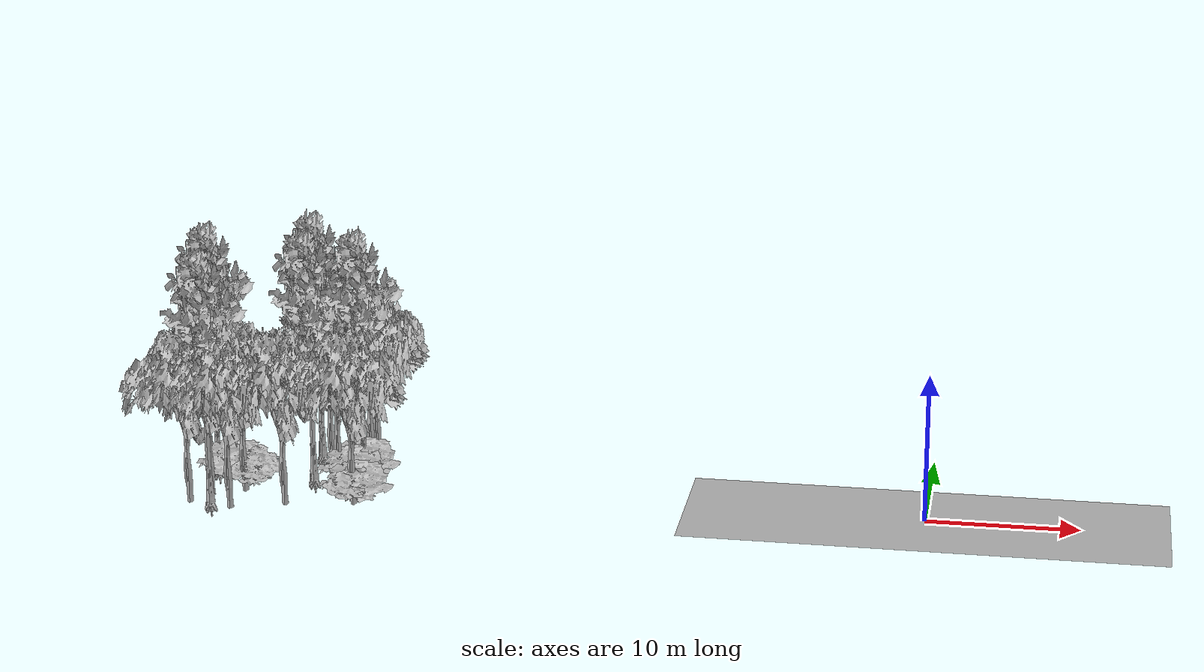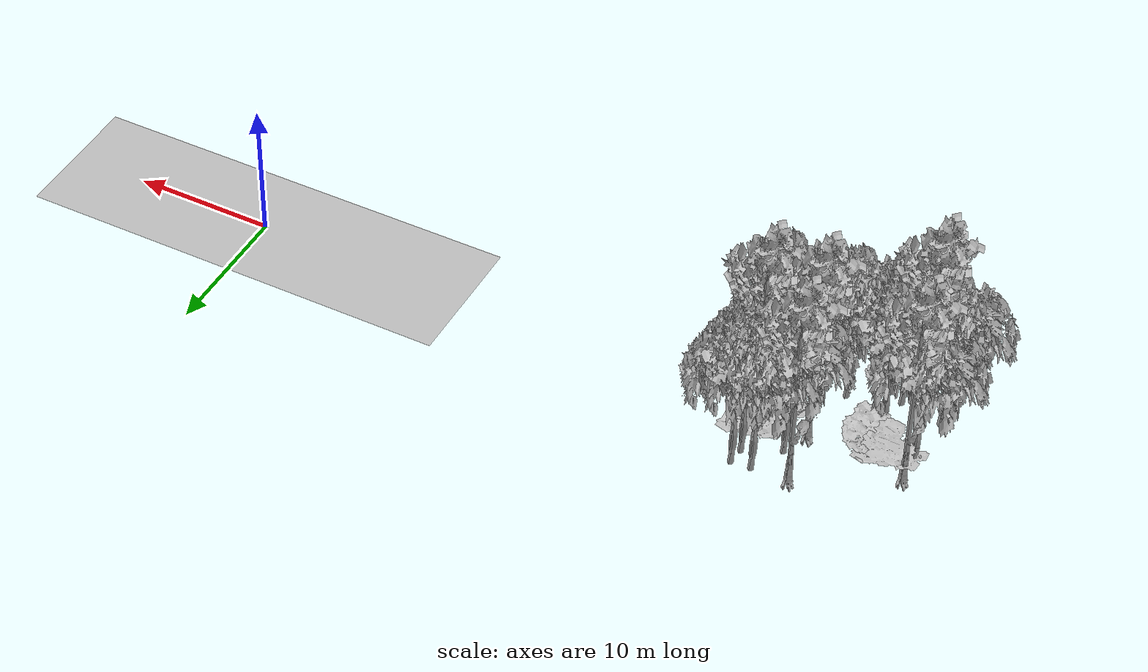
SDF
<sdf version="1.7">
 <world name="default">
  <model name="ground_plane">
   <static>1</static>
   <link name="link">
    <collision name="collision">
     <pose>-50 0 0 0 -0 0</pose>
     <geometry><plane><normal>0 0 1</normal><size>100 100</size></plane></geometry>
     <surface><contact><ode><min_depth>0.01</min_depth><max_vel>0</max_vel></ode></contact></surface>
    </collision>
    <visual name="grass">
     <cast_shadows>0</cast_shadows>
     <geometry>
      <mesh>
       <scale>0.5814285714285714 0.18142857142857144 0.1</scale>
       <uri>file://grass_plane/meshes/grass_plane.dae</uri>
      </mesh>
     </geometry>
    </visual>
   </link>
  </model>
  <model name="Tree 31">
   <static>1</static>
   <pose>-39.06696065431292 4.966366985893352 0 1.57079 -0 0</pose>
   <link name="link">
    <collision name="collision">
     <geometry><mesh><scale>3.5 5 3.5</scale><uri>model://tree_2/meshes/tree_2.obj</uri></mesh></geometry>
    </collision>
    <visual name="visual">
     <geometry><mesh><scale>3.5 5 3.5</scale><uri>model://tree_2/meshes/tree_2.obj</uri></mesh></geometry>
    </visual>
   </link>
  </model>
  <model name="Tree 32">
   <static>1</static>
   <pose>-39.25738471204262 0.5717528178832492 0 1.57079 -0 0</pose>
   <link name="link">
    <collision name="collision">
     <geometry><mesh><scale>3.5 5 3.5</scale><uri>model://tree_2/meshes/tree_2.obj</uri></mesh></geometry>
    </collision>
    <visual name="visual">
     <geometry><mesh><scale>3.5 5 3.5</scale><uri>model://tree_2/meshes/tree_2.obj</uri></mesh></geometry>
    </visual>
   </link>
  </model>
  <model name="Tree 60">
   <static>1</static>
   <pose>-47.97615890949377 0.03845741228004229 0 1.57079 -0 0</pose>
   <link name="link">
    <collision name="collision">
     <geometry><mesh><scale>3.5 5 3.5</scale><uri>model://tree_2/meshes/tree_2.obj</uri></mesh></geometry>
    </collision>
    <visual name="visual">
     <geometry><mesh><scale>3.5 5 3.5</scale><uri>model://tree_2/meshes/tree_2.obj</uri></mesh></geometry>
    </visual>
   </link>
  </model>
  <model name="Tree 66">
   <static>1</static>
   <pose>-41.45614136900993 4.778752562074764 0 1.57079 -0 0</pose>
   <link name="link">
    <collision name="collision">
     <geometry><mesh><scale>3.5 5 3.5</scale><uri>model://tree_9/meshes/tree_9.obj</uri></mesh></geometry>
    </collision>
    <visual name="visual">
     <geometry><mesh><scale>3.5 5 3.5</scale><uri>model://tree_9/meshes/tree_9.obj</uri></mesh></geometry>
    </visual>
   </link>
  </model>
  <model name="Tree 104">
   <static>1</static>
   <pose>-37.85736187017267 3.8658996228391302 0 1.57079 -0 0</pose>
   <link name="link">
    <collision name="collision">
     <geometry><mesh><scale>3.5 5 3.5</scale><uri>model://tree_2/meshes/tree_2.obj</uri></mesh></geometry>
    </collision>
    <visual name="visual">
     <geometry><mesh><scale>3.5 5 3.5</scale><uri>model://tree_2/meshes/tree_2.obj</uri></mesh></geometry>
    </visual>
   </link>
  </model>
  <model name="Tree 105">
   <static>1</static>
   <pose>-48.102389523358156 -4.297356126514607 0 1.57079 -0 0</pose>
   <link name="link">
    <collision name="collision">
     <geometry><mesh><scale>3.5 5 3.5</scale><uri>model://tree_2/meshes/tree_2.obj</uri></mesh></geometry>
    </collision>
    <visual name="visual">
     <geometry><mesh><scale>3.5 5 3.5</scale><uri>model://tree_2/meshes/tree_2.obj</uri></mesh></geometry>
    </visual>
   </link>
  </model>
  <model name="Tree 106">
   <static>1</static>
   <pose>-45.20300939710416 -4.874004656849728 0 1.57079 -0 0</pose>
   <link name="link">
    <collision name="collision">
     <geometry><mesh><scale>3.5 5 3.5</scale><uri>model://tree_2/meshes/tree_2.obj</uri></mesh></geometry>
    </collision>
    <visual name="visual">
     <geometry><mesh><scale>3.5 5 3.5</scale><uri>model://tree_2/meshes/tree_2.obj</uri></mesh></geometry>
    </visual>
   </link>
  </model>
  <model name="Tree 137">
   <static>1</static>
   <pose>-37.70243793172632 5.0366447964859375 0 1.57079 -0 0</pose>
   <link name="link">
    <collision name="collision">
     <geometry><mesh><scale>3.5 5 3.5</scale><uri>model://tree_2/meshes/tree_2.obj</uri></mesh></geometry>
    </collision>
    <visual name="visual">
     <geometry><mesh><scale>3.5 5 3.5</scale><uri>model://tree_2/meshes/tree_2.obj</uri></mesh></geometry>
    </visual>
   </link>
  </model>
  <model name="Tree 158">
   <static>1</static>
   <pose>-44.78451948293328 -0.4881497527490808 0 1.57079 -0 0</pose>
   <link name="link">
    <collision name="collision">
     <geometry><mesh><scale>4 2.5 4</scale><uri>model://tree_1/meshes/tree_1.obj</uri></mesh></geometry>
    </collision>
    <visual name="visual">
     <geometry><mesh><scale>4 2.5 4</scale><uri>model://tree_1/meshes/tree_1.obj</uri></mesh></geometry>
    </visual>
   </link>
  </model>
  <model name="Tree 225">
   <static>1</static>
   <pose>-45.04723827868958 -1.9172894733470311 0 1.57079 -0 0</pose>
   <link name="link">
    <collision name="collision">
     <geometry><mesh><scale>3.5 5 3.5</scale><uri>model://tree_2/meshes/tree_2.obj</uri></mesh></geometry>
    </collision>
    <visual name="visual">
     <geometry><mesh><scale>3.5 5 3.5</scale><uri>model://tree_2/meshes/tree_2.obj</uri></mesh></geometry>
    </visual>
   </link>
  </model>
  <model name="Tree 230">
   <static>1</static>
   <pose>-47.75512130810589 1.288691710606333 0 1.57079 -0 0</pose>
   <link name="link">
    <collision name="collision">
     <geometry><mesh><scale>3.5 5 3.5</scale><uri>model://tree_9/meshes/tree_9.obj</uri></mesh></geometry>
    </collision>
    <visual name="visual">
     <geometry><mesh><scale>3.5 5 3.5</scale><uri>model://tree_9/meshes/tree_9.obj</uri></mesh></geometry>
    </visual>
   </link>
  </model>
  <model name="Tree 311">
   <static>1</static>
   <pose>-40.94515581076089 0.6718121175911911 0 1.57079 -0 0</pose>
   <link name="link">
    <collision name="collision">
     <geometry><mesh><scale>3.5 5 3.5</scale><uri>model://tree_9/meshes/tree_9.obj</uri></mesh></geometry>
    </collision>
    <visual name="visual">
     <geometry><mesh><scale>3.5 5 3.5</scale><uri>model://tree_9/meshes/tree_9.obj</uri></mesh></geometry>
    </visual>
   </link>
  </model>
  <model name="Tree 325">
   <static>1</static>
   <pose>-38.07171022068172 0.24731518634334115 0 1.57079 -0 0</pose>
   <link name="link">
    <collision name="collision">
     <geometry><mesh><scale>3 2 3</scale><uri>model://tree_3/meshes/tree_3.obj</uri></mesh></geometry>
    </collision>
    <visual name="visual">
     <geometry><mesh><scale>3 2 3</scale><uri>model://tree_3/meshes/tree_3.obj</uri></mesh></geometry>
    </visual>
   </link>
  </model>
  <model name="Tree 332">
   <static>1</static>
   <pose>-46.350641204831156 0.10524603647611741 0 1.57079 -0 0</pose>
   <link name="link">
    <collision name="collision">
     <geometry><mesh><scale>3 2 3</scale><uri>model://tree_3/meshes/tree_3.obj</uri></mesh></geometry>
    </collision>
    <visual name="visual">
     <geometry><mesh><scale>3 2 3</scale><uri>model://tree_3/meshes/tree_3.obj</uri></mesh></geometry>
    </visual>
   </link>
  </model>
  <model name="Tree 348">
   <static>1</static>
   <pose>-46.997262832569824 -3.0515958764316746 0 1.57079 -0 0</pose>
   <link name="link">
    <collision name="collision">
     <geometry><mesh><scale>3.5 5 3.5</scale><uri>model://tree_2/meshes/tree_2.obj</uri></mesh></geometry>
    </collision>
    <visual name="visual">
     <geometry><mesh><scale>3.5 5 3.5</scale><uri>model://tree_2/meshes/tree_2.obj</uri></mesh></geometry>
    </visual>
   </link>
  </model>
  <model name="Tree 378">
   <static>1</static>
   <pose>-37.70595546055143 1.6840946559621166 0 1.57079 -0 0</pose>
   <link name="link">
    <collision name="collision">
     <geometry><mesh><scale>3 2 3</scale><uri>model://tree_3/meshes/tree_3.obj</uri></mesh></geometry>
    </collision>
    <visual name="visual">
     <geometry><mesh><scale>3 2 3</scale><uri>model://tree_3/meshes/tree_3.obj</uri></mesh></geometry>
    </visual>
   </link>
  </model>
  <model name="Tree 390">
   <static>1</static>
   <pose>-37.64487891306089 1.3061207599855287 0 1.57079 -0 0</pose>
   <link name="link">
    <collision name="collision">
     <geometry><mesh><scale>3.5 5 3.5</scale><uri>model://tree_9/meshes/tree_9.obj</uri></mesh></geometry>
    </collision>
    <visual name="visual">
     <geometry><mesh><scale>3.5 5 3.5</scale><uri>model://tree_9/meshes/tree_9.obj</uri></mesh></geometry>
    </visual>
   </link>
  </model>
  <model name="Tree 429">
   <static>1</static>
   <pose>-37.21117242509824 -2.3865071605018926 0 1.57079 -0 0</pose>
   <link name="link">
    <collision name="collision">
     <geometry><mesh><scale>3 2 3</scale><uri>model://tree_3/meshes/tree_3.obj</uri></mesh></geometry>
    </collision>
    <visual name="visual">
     <geometry><mesh><scale>3 2 3</scale><uri>model://tree_3/meshes/tree_3.obj</uri></mesh></geometry>
    </visual>
   </link>
  </model>
  <model name="Tree 446">
   <static>1</static>
   <pose>-41.803380996863055 -3.786032665845717 0 1.57079 -0 0</pose>
   <link name="link">
    <collision name="collision">
     <geometry><mesh><scale>3.5 5 3.5</scale><uri>model://tree_2/meshes/tree_2.obj</uri></mesh></geometry>
    </collision>
    <visual name="visual">
     <geometry><mesh><scale>3.5 5 3.5</scale><uri>model://tree_2/meshes/tree_2.obj</uri></mesh></geometry>
    </visual>
   </link>
  </model>
  <model name="Tree 452">
   <static>1</static>
   <pose>-46.63648342860552 -4.271824723004828 0 1.57079 -0 0</pose>
   <link name="link">
    <collision name="collision">
     <geometry><mesh><scale>3.5 5 3.5</scale><uri>model://tree_9/meshes/tree_9.obj</uri></mesh></geometry>
    </collision>
    <visual name="visual">
     <geometry><mesh><scale>3.5 5 3.5</scale><uri>model://tree_9/meshes/tree_9.obj</uri></mesh></geometry>
    </visual>
   </link>
  </model>
  <model name="Tree 479">
   <static>1</static>
   <pose>-37.38482859593507 -3.0194197032672108 0 1.57079 -0 0</pose>
   <link name="link">
    <collision name="collision">
     <geometry><mesh><scale>3.5 5 3.5</scale><uri>model://tree_2/meshes/tree_2.obj</uri></mesh></geometry>
    </collision>
    <visual name="visual">
     <geometry><mesh><scale>3.5 5 3.5</scale><uri>model://tree_2/meshes/tree_2.obj</uri></mesh></geometry>
    </visual>
   </link>
  </model>
  <model name="Tree 493">
   <static>1</static>
   <pose>-40.27537320405539 2.650792862851013 0 1.57079 -0 0</pose>
   <link name="link">
    <collision name="collision">
     <geometry><mesh><scale>3.5 5 3.5</scale><uri>model://tree_2/meshes/tree_2.obj</uri></mesh></geometry>
    </collision>
    <visual name="visual">
     <geometry><mesh><scale>3.5 5 3.5</scale><uri>model://tree_2/meshes/tree_2.obj</uri></mesh></geometry>
    </visual>
   </link>
  </model>
  <model name="Tree 535">
   <static>1</static>
   <pose>-37.77080404965483 -2.093623649673196 0 1.57079 -0 0</pose>
   <link name="link">
    <collision name="collision">
     <geometry><mesh><scale>4 2.5 4</scale><uri>model://tree_1/meshes/tree_1.obj</uri></mesh></geometry>
    </collision>
    <visual name="visual">
     <geometry><mesh><scale>4 2.5 4</scale><uri>model://tree_1/meshes/tree_1.obj</uri></mesh></geometry>
    </visual>
   </link>
  </model>
 </world>
</sdf>
